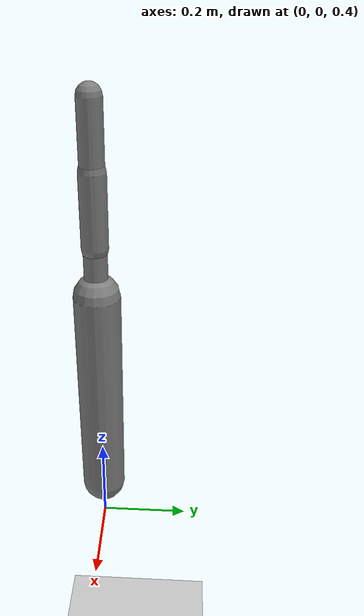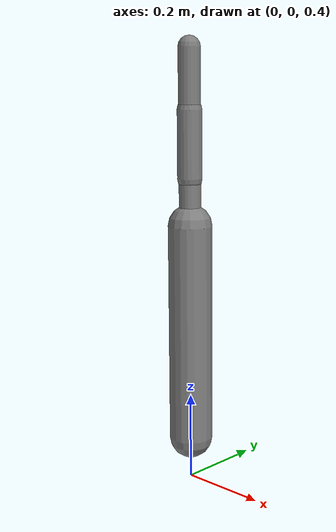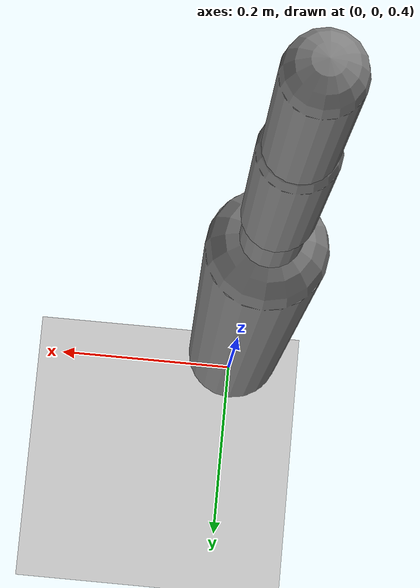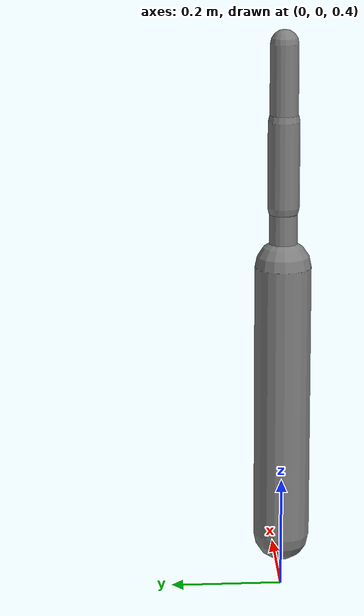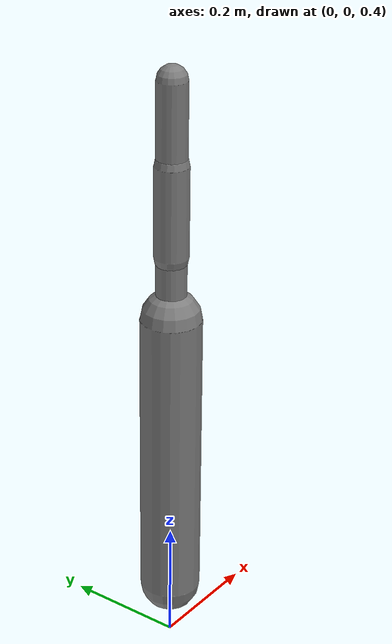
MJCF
<?xml version='1.0' encoding='UTF-8'?>
<mujoco model="RobotModel">
  <option gravity="0 0 -9.81" timestep="0.002" solver="CG" iterations="500" integrator="Euler"/>
  <worldbody>
    <geom name="Floor" type="plane" size="10 10 0.1" pos="0 0 0" rgba="0.8 0.8 0.8 1"/>
    <body name="Limb0" pos="0 0 0.5">
      <geom type="capsule" fromto="0 0 0 0 0 0.5" size="0.05" density="1000" contype="1" conaffinity="1"/>
      <body name="Limb0_17299548" pos="0 0 0.5">
        <geom type="capsule" fromto="0 0 0 0 0 0.10681726432428745" size="0.024863347078484727" density="500.0" contype="1" conaffinity="1"/>
        <body name="Limb1_17299548" pos="0 0 0.10681726432428745">
          <geom type="capsule" fromto="0 0 0 0 0 0.1504635705189393" size="0.027915446426417027" density="500.0" contype="1" conaffinity="1"/>
          <body name="Limb2_17299548" pos="0 0 0.1504635705189393">
            <geom type="capsule" fromto="0 0 0 0 0 0.13451119355162047" size="0.02494938982485345" density="500.0" contype="1" conaffinity="1"/>
            <joint name="Joint_Limb1_17299548_Limb2_17299548_0" type="hinge" axis="0 1 0" range="-60 60"/>
          </body>
          <joint name="Joint_Limb0_17299548_Limb1_17299548_0" type="hinge" axis="1 0 0" range="-60 60"/>
        </body>
        <joint name="Joint_Limb0_Limb0_17299548_0" type="hinge" axis="1 0 0" range="-60 60"/>
      </body>
      <body name="Limb3_17299548" pos="0 0 0.5">
        <geom type="capsule" fromto="0 0 0 0 0 0.17853807965769755" size="0.02111489758822206" density="500.0" contype="1" conaffinity="1"/>
        <joint name="Joint_Limb0_Limb3_17299548_0" type="hinge" axis="1 0 0" range="-60 60"/>
      </body>
      <body name="Limb4_17299548" pos="0 0 0.5">
        <geom type="capsule" fromto="0 0 0 0 0 0.19748342112015294" size="0.022679192915371967" density="500.0" contype="1" conaffinity="1"/>
        <joint name="Joint_Limb0_Limb4_17299548_0" type="hinge" axis="1 0 0" range="-60 60"/>
      </body>
    </body>
  </worldbody>
  <actuator>
    <position name="position_Actuator_Joint_Limb0_Limb0_17299548_0" joint="Joint_Limb0_Limb0_17299548_0" gear="1.0"/>
    <position name="position_Actuator_Joint_Limb0_17299548_Limb1_17299548_0" joint="Joint_Limb0_17299548_Limb1_17299548_0" gear="1.0"/>
    <position name="position_Actuator_Joint_Limb1_17299548_Limb2_17299548_0" joint="Joint_Limb1_17299548_Limb2_17299548_0" gear="1.0"/>
    <position name="position_Actuator_Joint_Limb0_Limb3_17299548_0" joint="Joint_Limb0_Limb3_17299548_0" gear="1.0"/>
    <position name="position_Actuator_Joint_Limb0_Limb4_17299548_0" joint="Joint_Limb0_Limb4_17299548_0" gear="1.0"/>
  </actuator>
</mujoco>
